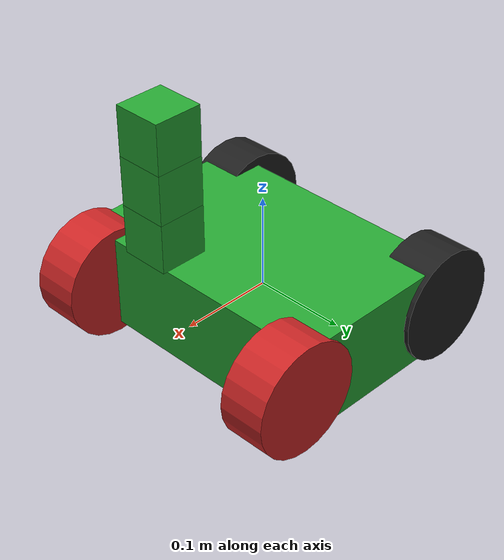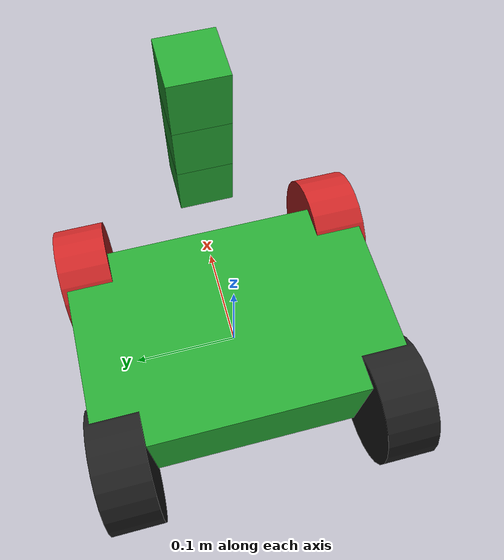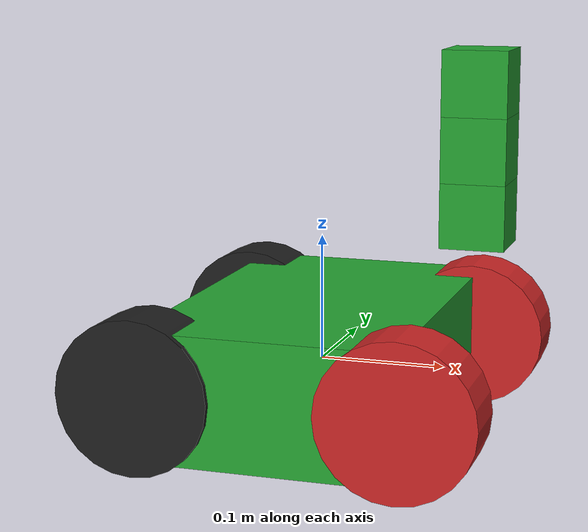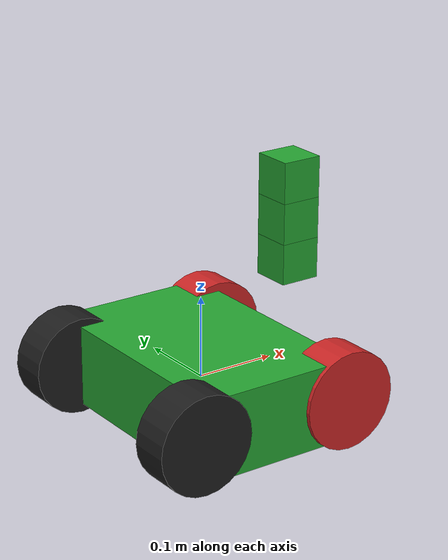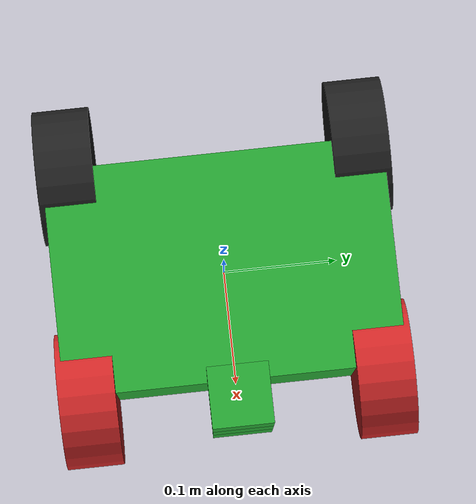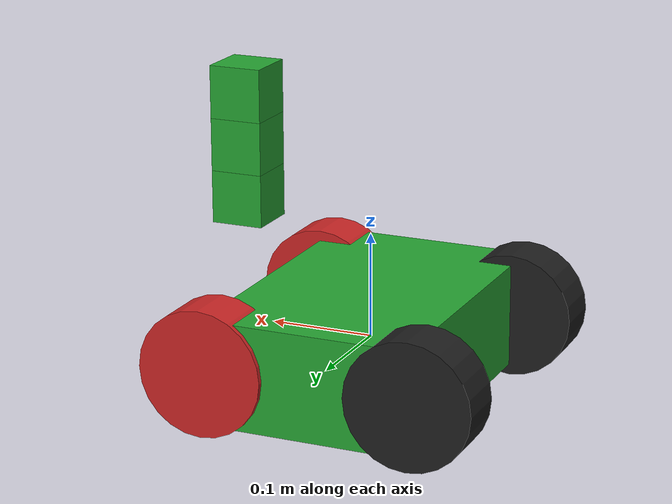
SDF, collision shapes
<?xml version='1.0'?>
<sdf version='1.6'>
  <model name='omni_car'>
    <link name='dummy'>
      <inertial>
        <pose frame=''>0.000456 0 0.000638 0 -0 0</pose>
        <mass>8.2301</mass>
        <inertia>
          <ixx>0.0209684</ixx>
          <ixy>0</ixy>
          <ixz>-0.000653858</ixz>
          <iyy>0.0214354</iyy>
          <iyz>0</iyz>
          <izz>0.02047</izz>
        </inertia>
      </inertial>
      <velocity_decay/>
      <velocity_decay/>
      <velocity_decay/>
      <velocity_decay/>
      <sensor name='camera1' type='camera'>
        <update_rate>30</update_rate>
        <camera name='head'>
          <horizontal_fov>1.39626</horizontal_fov>
          <image>
            <width>1920</width>
            <height>1080</height>
            <format>R8G8B8</format>
          </image>
          <clip>
            <near>0.02</near>
            <far>300</far>
          </clip>
          <noise>
            <type>gaussian</type>
            <mean>0</mean>
            <stddev>0.007</stddev>
          </noise>
        </camera>
        <plugin name='camera_controller' filename='libgazebo_ros_camera.so'>
          <alwaysOn>1</alwaysOn>
          <updateRate>0.0</updateRate>
          <cameraName>/</cameraName>
          <imageTopicName>cam</imageTopicName>
          <cameraInfoTopicName>camera_info</cameraInfoTopicName>
          <frameName>camera_link</frameName>
          <hackBaseline>0.07</hackBaseline>
          <distortionK1>0.0</distortionK1>
          <distortionK2>0.0</distortionK2>
          <distortionK3>0.0</distortionK3>
          <distortionT1>0.0</distortionT1>
          <distortionT2>0.0</distortionT2>
          <robotNamespace>/</robotNamespace>
        </plugin>
        <pose frame=''>0.125 0 0.175 0 -0 0</pose>
      </sensor>
      <velocity_decay/>
      <sensor name='head_hokuyo_sensor' type='ray'>
        <visualize>0</visualize>
        <update_rate>15</update_rate>
        <ray>
          <scan>
            <horizontal>
              <samples>720</samples>
              <resolution>1</resolution>
              <min_angle>-3.14159</min_angle>
              <max_angle>3.14159</max_angle>
            </horizontal>
            <vertical>
              <samples>1</samples>
              <min_angle>0</min_angle>
              <max_angle>0</max_angle>
            </vertical>
          </scan>
          <range>
            <min>0.05</min>
            <max>30</max>
            <resolution>0.01</resolution>
          </range>
          <noise>
            <type>gaussian</type>
            <mean>0</mean>
            <stddev>0.01</stddev>
          </noise>
        </ray>
        <plugin name='gazebo_ros_head_hokuyo_controller' filename='libgazebo_ros_laser.so'>
          <topicName>/scan</topicName>
          <frameName>laser_frame</frameName>
          <robotNamespace>/</robotNamespace>
        </plugin>
        <pose frame=''>0.125 0 0.225 0 -0 0</pose>
      </sensor>
      <gravity>1</gravity>
      <velocity_decay/>
      <gravity>1</gravity>
      <sensor name='imu_sensor' type='imu'>
        <always_on>1</always_on>
        <update_rate>100</update_rate>
        <visualize>1</visualize>
        <topic>__default_topic__</topic>
        <plugin name='imu_plugin' filename='libgazebo_ros_imu_sensor.so'>
          <topicName>imu</topicName>
          <bodyName>imu_link</bodyName>
          <updateRateHZ>100.0</updateRateHZ>
          <gaussianNoise>0.0</gaussianNoise>
          <xyzOffset>0 0 0</xyzOffset>
          <rpyOffset>0 0 0</rpyOffset>
          <frameName>imu_link</frameName>
          <robotNamespace>/</robotNamespace>
        </plugin>
        <pose frame=''>0.125 0 0.125 0 -0 0</pose>
        <imu/>
      </sensor>
      <self_collide>0</self_collide>
      <enable_wind>0</enable_wind>
      <kinematic>0</kinematic>
      <pose frame=''>0 0 0 0 -0 0</pose>
      <visual name='dummy_fixed_joint_lump__base_footprint_visual'>
        <pose frame=''>0 0 0 0 -0 0</pose>
        <geometry>
          <box>
            <size>0.001 0.001 0.001</size>
          </box>
        </geometry>
        <material>
          <script>
            <name>Gazebo/Green</name>
            <uri>file://media/materials/scripts/gazebo.material</uri>
          </script>
          <shader type='pixel'/>
        </material>
        <transparency>0</transparency>
        <cast_shadows>1</cast_shadows>
      </visual>
      <visual name='dummy_fixed_joint_lump__base_link_visual_1'>
        <pose frame=''>0 0 0.05 0 -0 1.5708</pose>
        <geometry>
          <box>
            <size>0.2 0.3 0.1</size>
          </box>
        </geometry>
        <material>
          <script>
            <name>Gazebo/Orange</name>
            <uri>file://media/materials/scripts/gazebo.material</uri>
          </script>
          <shader type='pixel'/>
        </material>
        <transparency>0</transparency>
        <cast_shadows>1</cast_shadows>
      </visual>
      <visual name='dummy_fixed_joint_lump__camera_link_visual_2'>
        <pose frame=''>0.125 0 0.175 0 -0 0</pose>
        <geometry>
          <box>
            <size>0.05 0.05 0.05</size>
          </box>
        </geometry>
        <material>
          <script>
            <name>Gazebo/Red</name>
            <uri>file://media/materials/scripts/gazebo.material</uri>
          </script>
          <shader type='pixel'/>
        </material>
        <transparency>0</transparency>
        <cast_shadows>1</cast_shadows>
      </visual>
      <visual name='dummy_fixed_joint_lump__laser_frame_visual_3'>
        <pose frame=''>0.125 0 0.225 0 -0 0</pose>
        <geometry>
          <mesh>
            <scale>1 1 1</scale>
            <uri>/home/chh3213/ros_wc/src/gazebo_car/meshes/hokuyo.dae</uri>
          </mesh>
        </geometry>
        <material>
          <shader type='pixel'/>
        </material>
        <transparency>0</transparency>
        <cast_shadows>1</cast_shadows>
      </visual>
      <visual name='dummy_fixed_joint_lump__imu_link_visual_4'>
        <pose frame=''>0.125 0 0.125 0 -0 0</pose>
        <geometry>
          <box>
            <size>0.05 0.05 0.05</size>
          </box>
        </geometry>
        <material>
          <script>
            <name>Gazebo/Orange</name>
            <uri>file://media/materials/scripts/gazebo.material</uri>
          </script>
          <shader type='pixel'/>
        </material>
        <transparency>0</transparency>
        <cast_shadows>1</cast_shadows>
      </visual>
      <collision name='dummy_fixed_joint_lump__base_link_collision'>
        <laser_retro>0</laser_retro>
        <max_contacts>10</max_contacts>
        <pose frame=''>0 0 0 0 -0 0</pose>
        <geometry>
          <box>
            <size>0.2 0.3 0.1</size>
          </box>
        </geometry>
        <surface>
          <friction>
            <ode>
              <mu>1</mu>
              <mu2>1</mu2>
              <fdir1>0 0 0</fdir1>
              <slip1>0</slip1>
              <slip2>0</slip2>
            </ode>
            <torsional>
              <coefficient>1</coefficient>
              <patch_radius>0</patch_radius>
              <surface_radius>0</surface_radius>
              <use_patch_radius>1</use_patch_radius>
              <ode>
                <slip>0</slip>
              </ode>
            </torsional>
          </friction>
          <bounce>
            <restitution_coefficient>0</restitution_coefficient>
            <threshold>1e+06</threshold>
          </bounce>
          <contact>
            <collide_without_contact>0</collide_without_contact>
            <collide_without_contact_bitmask>1</collide_without_contact_bitmask>
            <collide_bitmask>1</collide_bitmask>
            <ode>
              <soft_cfm>0</soft_cfm>
              <soft_erp>0.2</soft_erp>
              <kp>1e+13</kp>
              <kd>1</kd>
              <max_vel>0.01</max_vel>
              <min_depth>0</min_depth>
            </ode>
            <bullet>
              <split_impulse>1</split_impulse>
              <split_impulse_penetration_threshold>-0.01</split_impulse_penetration_threshold>
              <soft_cfm>0</soft_cfm>
              <soft_erp>0.2</soft_erp>
              <kp>1e+13</kp>
              <kd>1</kd>
            </bullet>
          </contact>
        </surface>
      </collision>
      <collision name='dummy_fixed_joint_lump__camera_link_collision_1'>
        <laser_retro>0</laser_retro>
        <max_contacts>10</max_contacts>
        <pose frame=''>0.125 0 0.175 0 -0 0</pose>
        <geometry>
          <box>
            <size>0.05 0.05 0.05</size>
          </box>
        </geometry>
        <surface>
          <friction>
            <ode>
              <mu>1</mu>
              <mu2>1</mu2>
              <fdir1>0 0 0</fdir1>
              <slip1>0</slip1>
              <slip2>0</slip2>
            </ode>
            <torsional>
              <coefficient>1</coefficient>
              <patch_radius>0</patch_radius>
              <surface_radius>0</surface_radius>
              <use_patch_radius>1</use_patch_radius>
              <ode>
                <slip>0</slip>
              </ode>
            </torsional>
          </friction>
          <bounce>
            <restitution_coefficient>0</restitution_coefficient>
            <threshold>1e+06</threshold>
          </bounce>
          <contact>
            <collide_without_contact>0</collide_without_contact>
            <collide_without_contact_bitmask>1</collide_without_contact_bitmask>
            <collide_bitmask>1</collide_bitmask>
            <ode>
              <soft_cfm>0</soft_cfm>
              <soft_erp>0.2</soft_erp>
              <kp>1e+13</kp>
              <kd>1</kd>
              <max_vel>0.01</max_vel>
              <min_depth>0</min_depth>
            </ode>
            <bullet>
              <split_impulse>1</split_impulse>
              <split_impulse_penetration_threshold>-0.01</split_impulse_penetration_threshold>
              <soft_cfm>0</soft_cfm>
              <soft_erp>0.2</soft_erp>
              <kp>1e+13</kp>
              <kd>1</kd>
            </bullet>
          </contact>
        </surface>
      </collision>
      <collision name='dummy_fixed_joint_lump__imu_link_collision_3'>
        <laser_retro>0</laser_retro>
        <max_contacts>10</max_contacts>
        <pose frame=''>0.125 0 0.125 0 -0 0</pose>
        <geometry>
          <box>
            <size>0.05 0.05 0.05</size>
          </box>
        </geometry>
        <surface>
          <friction>
            <ode>
              <mu>1</mu>
              <mu2>1</mu2>
              <fdir1>0 0 0</fdir1>
              <slip1>0</slip1>
              <slip2>0</slip2>
            </ode>
            <torsional>
              <coefficient>1</coefficient>
              <patch_radius>0</patch_radius>
              <surface_radius>0</surface_radius>
              <use_patch_radius>1</use_patch_radius>
              <ode>
                <slip>0</slip>
              </ode>
            </torsional>
          </friction>
          <bounce>
            <restitution_coefficient>0</restitution_coefficient>
            <threshold>1e+06</threshold>
          </bounce>
          <contact>
            <collide_without_contact>0</collide_without_contact>
            <collide_without_contact_bitmask>1</collide_without_contact_bitmask>
            <collide_bitmask>1</collide_bitmask>
            <ode>
              <soft_cfm>0</soft_cfm>
              <soft_erp>0.2</soft_erp>
              <kp>1e+13</kp>
              <kd>1</kd>
              <max_vel>0.01</max_vel>
              <min_depth>0</min_depth>
            </ode>
            <bullet>
              <split_impulse>1</split_impulse>
              <split_impulse_penetration_threshold>-0.01</split_impulse_penetration_threshold>
              <soft_cfm>0</soft_cfm>
              <soft_erp>0.2</soft_erp>
              <kp>1e+13</kp>
              <kd>1</kd>
            </bullet>
          </contact>
        </surface>
      </collision>
      <collision name='dummy_fixed_joint_lump__laser_frame_collision_2'>
        <laser_retro>0</laser_retro>
        <max_contacts>10</max_contacts>
        <pose frame=''>0.125 0 0.225 0 -0 0</pose>
        <geometry>
          <box>
            <size>0.05 0.05 0.05</size>
          </box>
        </geometry>
        <surface>
          <friction>
            <ode>
              <mu>1</mu>
              <mu2>1</mu2>
              <fdir1>0 0 0</fdir1>
              <slip1>0</slip1>
              <slip2>0</slip2>
            </ode>
            <torsional>
              <coefficient>1</coefficient>
              <patch_radius>0</patch_radius>
              <surface_radius>0</surface_radius>
              <use_patch_radius>1</use_patch_radius>
              <ode>
                <slip>0</slip>
              </ode>
            </torsional>
          </friction>
          <bounce>
            <restitution_coefficient>0</restitution_coefficient>
            <threshold>1e+06</threshold>
          </bounce>
          <contact>
            <collide_without_contact>0</collide_without_contact>
            <collide_without_contact_bitmask>1</collide_without_contact_bitmask>
            <collide_bitmask>1</collide_bitmask>
            <ode>
              <soft_cfm>0</soft_cfm>
              <soft_erp>0.2</soft_erp>
              <kp>1e+13</kp>
              <kd>1</kd>
              <max_vel>0.01</max_vel>
              <min_depth>0</min_depth>
            </ode>
            <bullet>
              <split_impulse>1</split_impulse>
              <split_impulse_penetration_threshold>-0.01</split_impulse_penetration_threshold>
              <soft_cfm>0</soft_cfm>
              <soft_erp>0.2</soft_erp>
              <kp>1e+13</kp>
              <kd>1</kd>
            </bullet>
          </contact>
        </surface>
      </collision>
    </link>
    <link name='wheel_1'>
      <pose frame=''>0.099999 0.13 -0 -1.5708 0 0</pose>
      <inertial>
        <pose frame=''>0 0 0 0 -0 0</pose>
        <mass>0.5</mass>
        <inertia>
          <ixx>0.01</ixx>
          <ixy>0</ixy>
          <ixz>0</ixz>
          <iyy>0.01</iyy>
          <iyz>0</iyz>
          <izz>0.01</izz>
        </inertia>
      </inertial>
      <gravity>1</gravity>
      <velocity_decay/>
      <self_collide>0</self_collide>
      <enable_wind>0</enable_wind>
      <kinematic>0</kinematic>
      <visual name='wheel_1_visual'>
        <pose frame=''>0 0 0 0 -0 0</pose>
        <geometry>
          <cylinder>
            <length>0.05</length>
            <radius>0.06</radius>
          </cylinder>
        </geometry>
        <material>
          <script>
            <name>Gazebo/Red</name>
            <uri>file://media/materials/scripts/gazebo.material</uri>
          </script>
          <shader type='pixel'/>
        </material>
        <transparency>0</transparency>
        <cast_shadows>1</cast_shadows>
      </visual>
      <collision name='wheel_1_collision'>
        <laser_retro>0</laser_retro>
        <max_contacts>10</max_contacts>
        <pose frame=''>0 0 0 0 -0 0</pose>
        <geometry>
          <cylinder>
            <radius>0.06</radius>
            <length>0.05</length>
          </cylinder>
        </geometry>
        <surface>
          <friction>
            <ode>
              <mu>1</mu>
              <mu2>1</mu2>
              <fdir1>0 0 0</fdir1>
              <slip1>0</slip1>
              <slip2>0</slip2>
            </ode>
            <torsional>
              <coefficient>1</coefficient>
              <patch_radius>0</patch_radius>
              <surface_radius>0</surface_radius>
              <use_patch_radius>1</use_patch_radius>
              <ode>
                <slip>0</slip>
              </ode>
            </torsional>
          </friction>
          <bounce>
            <restitution_coefficient>0</restitution_coefficient>
            <threshold>1e+06</threshold>
          </bounce>
          <contact>
            <collide_without_contact>0</collide_without_contact>
            <collide_without_contact_bitmask>1</collide_without_contact_bitmask>
            <collide_bitmask>1</collide_bitmask>
            <ode>
              <soft_cfm>0</soft_cfm>
              <soft_erp>0.2</soft_erp>
              <kp>1e+13</kp>
              <kd>1</kd>
              <max_vel>0.01</max_vel>
              <min_depth>0</min_depth>
            </ode>
            <bullet>
              <split_impulse>1</split_impulse>
              <split_impulse_penetration_threshold>-0.01</split_impulse_penetration_threshold>
              <soft_cfm>0</soft_cfm>
              <soft_erp>0.2</soft_erp>
              <kp>1e+13</kp>
              <kd>1</kd>
            </bullet>
          </contact>
        </surface>
      </collision>
    </link>
    <link name='wheel_2'>
      <pose frame=''>-0.1 0.13 -0 -1.5708 0 0</pose>
      <inertial>
        <pose frame=''>0 0 0 0 -0 0</pose>
        <mass>0.5</mass>
        <inertia>
          <ixx>0.01</ixx>
          <ixy>0</ixy>
          <ixz>0</ixz>
          <iyy>0.01</iyy>
          <iyz>0</iyz>
          <izz>0.01</izz>
        </inertia>
      </inertial>
      <gravity>1</gravity>
      <velocity_decay/>
      <self_collide>0</self_collide>
      <enable_wind>0</enable_wind>
      <kinematic>0</kinematic>
      <visual name='wheel_2_visual'>
        <pose frame=''>0 0 0 0 -0 0</pose>
        <geometry>
          <cylinder>
            <length>0.05</length>
            <radius>0.06</radius>
          </cylinder>
        </geometry>
        <material>
          <script>
            <name>Gazebo/Black</name>
            <uri>file://media/materials/scripts/gazebo.material</uri>
          </script>
          <shader type='pixel'/>
        </material>
        <transparency>0</transparency>
        <cast_shadows>1</cast_shadows>
      </visual>
      <collision name='wheel_2_collision'>
        <laser_retro>0</laser_retro>
        <max_contacts>10</max_contacts>
        <pose frame=''>0 0 0 0 -0 0</pose>
        <geometry>
          <cylinder>
            <radius>0.06</radius>
            <length>0.05</length>
          </cylinder>
        </geometry>
        <surface>
          <friction>
            <ode>
              <mu>1</mu>
              <mu2>1</mu2>
              <fdir1>0 0 0</fdir1>
              <slip1>0</slip1>
              <slip2>0</slip2>
            </ode>
            <torsional>
              <coefficient>1</coefficient>
              <patch_radius>0</patch_radius>
              <surface_radius>0</surface_radius>
              <use_patch_radius>1</use_patch_radius>
              <ode>
                <slip>0</slip>
              </ode>
            </torsional>
          </friction>
          <bounce>
            <restitution_coefficient>0</restitution_coefficient>
            <threshold>1e+06</threshold>
          </bounce>
          <contact>
            <collide_without_contact>0</collide_without_contact>
            <collide_without_contact_bitmask>1</collide_without_contact_bitmask>
            <collide_bitmask>1</collide_bitmask>
            <ode>
              <soft_cfm>0</soft_cfm>
              <soft_erp>0.2</soft_erp>
              <kp>1e+13</kp>
              <kd>1</kd>
              <max_vel>0.01</max_vel>
              <min_depth>0</min_depth>
            </ode>
            <bullet>
              <split_impulse>1</split_impulse>
              <split_impulse_penetration_threshold>-0.01</split_impulse_penetration_threshold>
              <soft_cfm>0</soft_cfm>
              <soft_erp>0.2</soft_erp>
              <kp>1e+13</kp>
              <kd>1</kd>
            </bullet>
          </contact>
        </surface>
      </collision>
    </link>
    <link name='wheel_3'>
      <pose frame=''>0.1 -0.13 0 -1.5708 0 0</pose>
      <inertial>
        <pose frame=''>0 0 0 0 -0 0</pose>
        <mass>0.5</mass>
        <inertia>
          <ixx>0.01</ixx>
          <ixy>0</ixy>
          <ixz>0</ixz>
          <iyy>0.01</iyy>
          <iyz>0</iyz>
          <izz>0.01</izz>
        </inertia>
      </inertial>
      <gravity>1</gravity>
      <velocity_decay/>
      <self_collide>0</self_collide>
      <enable_wind>0</enable_wind>
      <kinematic>0</kinematic>
      <visual name='wheel_3_visual'>
        <pose frame=''>0 0 0 0 -0 0</pose>
        <geometry>
          <cylinder>
            <length>0.05</length>
            <radius>0.06</radius>
          </cylinder>
        </geometry>
        <material>
          <script>
            <name>Gazebo/Red</name>
            <uri>file://media/materials/scripts/gazebo.material</uri>
          </script>
          <shader type='pixel'/>
        </material>
        <transparency>0</transparency>
        <cast_shadows>1</cast_shadows>
      </visual>
      <collision name='wheel_3_collision'>
        <laser_retro>0</laser_retro>
        <max_contacts>10</max_contacts>
        <pose frame=''>0 0 0 0 -0 0</pose>
        <geometry>
          <cylinder>
            <radius>0.06</radius>
            <length>0.05</length>
          </cylinder>
        </geometry>
        <surface>
          <friction>
            <ode>
              <mu>1</mu>
              <mu2>1</mu2>
              <fdir1>0 0 0</fdir1>
              <slip1>0</slip1>
              <slip2>0</slip2>
            </ode>
            <torsional>
              <coefficient>1</coefficient>
              <patch_radius>0</patch_radius>
              <surface_radius>0</surface_radius>
              <use_patch_radius>1</use_patch_radius>
              <ode>
                <slip>0</slip>
              </ode>
            </torsional>
          </friction>
          <bounce>
            <restitution_coefficient>0</restitution_coefficient>
            <threshold>1e+06</threshold>
          </bounce>
          <contact>
            <collide_without_contact>0</collide_without_contact>
            <collide_without_contact_bitmask>1</collide_without_contact_bitmask>
            <collide_bitmask>1</collide_bitmask>
            <ode>
              <soft_cfm>0</soft_cfm>
              <soft_erp>0.2</soft_erp>
              <kp>1e+13</kp>
              <kd>1</kd>
              <max_vel>0.01</max_vel>
              <min_depth>0</min_depth>
            </ode>
            <bullet>
              <split_impulse>1</split_impulse>
              <split_impulse_penetration_threshold>-0.01</split_impulse_penetration_threshold>
              <soft_cfm>0</soft_cfm>
              <soft_erp>0.2</soft_erp>
              <kp>1e+13</kp>
              <kd>1</kd>
            </bullet>
          </contact>
        </surface>
      </collision>
    </link>
    <link name='wheel_4'>
      <pose frame=''>-0.099999 -0.13 0 -1.5708 0 0</pose>
      <inertial>
        <pose frame=''>0 0 0 0 -0 0</pose>
        <mass>0.5</mass>
        <inertia>
          <ixx>0.01</ixx>
          <ixy>0</ixy>
          <ixz>0</ixz>
          <iyy>0.01</iyy>
          <iyz>0</iyz>
          <izz>0.01</izz>
        </inertia>
      </inertial>
      <gravity>1</gravity>
      <velocity_decay/>
      <self_collide>0</self_collide>
      <enable_wind>0</enable_wind>
      <kinematic>0</kinematic>
      <visual name='wheel_4_visual'>
        <pose frame=''>0 0 0 0 -0 0</pose>
        <geometry>
          <cylinder>
            <length>0.05</length>
            <radius>0.06</radius>
          </cylinder>
        </geometry>
        <material>
          <script>
            <name>Gazebo/Black</name>
            <uri>file://media/materials/scripts/gazebo.material</uri>
          </script>
          <shader type='pixel'/>
        </material>
        <transparency>0</transparency>
        <cast_shadows>1</cast_shadows>
      </visual>
      <collision name='wheel_4_collision'>
        <laser_retro>0</laser_retro>
        <max_contacts>10</max_contacts>
        <pose frame=''>0 0 0 0 -0 0</pose>
        <geometry>
          <cylinder>
            <radius>0.06</radius>
            <length>0.05</length>
          </cylinder>
        </geometry>
        <surface>
          <friction>
            <ode>
              <mu>1</mu>
              <mu2>1</mu2>
              <fdir1>0 0 0</fdir1>
              <slip1>0</slip1>
              <slip2>0</slip2>
            </ode>
            <torsional>
              <coefficient>1</coefficient>
              <patch_radius>0</patch_radius>
              <surface_radius>0</surface_radius>
              <use_patch_radius>1</use_patch_radius>
              <ode>
                <slip>0</slip>
              </ode>
            </torsional>
          </friction>
          <bounce>
            <restitution_coefficient>0</restitution_coefficient>
            <threshold>1e+06</threshold>
          </bounce>
          <contact>
            <collide_without_contact>0</collide_without_contact>
            <collide_without_contact_bitmask>1</collide_without_contact_bitmask>
            <collide_bitmask>1</collide_bitmask>
            <ode>
              <soft_cfm>0</soft_cfm>
              <soft_erp>0.2</soft_erp>
              <kp>1e+13</kp>
              <kd>1</kd>
              <max_vel>0.01</max_vel>
              <min_depth>0</min_depth>
            </ode>
            <bullet>
              <split_impulse>1</split_impulse>
              <split_impulse_penetration_threshold>-0.01</split_impulse_penetration_threshold>
              <soft_cfm>0</soft_cfm>
              <soft_erp>0.2</soft_erp>
              <kp>1e+13</kp>
              <kd>1</kd>
            </bullet>
          </contact>
        </surface>
      </collision>
    </link>
    <joint name='base_to_wheel1' type='revolute'>
      <parent>dummy</parent>
      <child>wheel_1</child>
      <pose frame=''>0 -0 0 0 -0 0</pose>
      <axis>
        <xyz>0 0 1</xyz>
        <use_parent_model_frame>0</use_parent_model_frame>
        <limit>
          <lower>-1e+16</lower>
          <upper>1e+16</upper>
          <effort>-1</effort>
          <velocity>-1</velocity>
        </limit>
        <dynamics>
          <spring_reference>0</spring_reference>
          <spring_stiffness>0</spring_stiffness>
          <damping>0</damping>
          <friction>0</friction>
        </dynamics>
      </axis>
      <physics>
        <ode>
          <limit>
            <cfm>0</cfm>
            <erp>0.2</erp>
          </limit>
          <suspension>
            <cfm>0</cfm>
            <erp>0.2</erp>
          </suspension>
        </ode>
      </physics>
    </joint>
    <joint name='base_to_wheel2' type='revolute'>
      <parent>dummy</parent>
      <child>wheel_2</child>
      <pose frame=''>0 -0 0 0 -0 0</pose>
      <axis>
        <xyz>0 0 1</xyz>
        <use_parent_model_frame>0</use_parent_model_frame>
        <limit>
          <lower>-1e+16</lower>
          <upper>1e+16</upper>
          <effort>-1</effort>
          <velocity>-1</velocity>
        </limit>
        <dynamics>
          <spring_reference>0</spring_reference>
          <spring_stiffness>0</spring_stiffness>
          <damping>0</damping>
          <friction>0</friction>
        </dynamics>
      </axis>
      <physics>
        <ode>
          <limit>
            <cfm>0</cfm>
            <erp>0.2</erp>
          </limit>
          <suspension>
            <cfm>0</cfm>
            <erp>0.2</erp>
          </suspension>
        </ode>
      </physics>
    </joint>
    <joint name='base_to_wheel3' type='revolute'>
      <parent>dummy</parent>
      <child>wheel_3</child>
      <pose frame=''>0 0 0 0 -0 0</pose>
      <axis>
        <xyz>0 0 1</xyz>
        <use_parent_model_frame>0</use_parent_model_frame>
        <limit>
          <lower>-1e+16</lower>
          <upper>1e+16</upper>
          <effort>-1</effort>
          <velocity>-1</velocity>
        </limit>
        <dynamics>
          <spring_reference>0</spring_reference>
          <spring_stiffness>0</spring_stiffness>
          <damping>0</damping>
          <friction>0</friction>
        </dynamics>
      </axis>
      <physics>
        <ode>
          <limit>
            <cfm>0</cfm>
            <erp>0.2</erp>
          </limit>
          <suspension>
            <cfm>0</cfm>
            <erp>0.2</erp>
          </suspension>
        </ode>
      </physics>
    </joint>
    <joint name='base_to_wheel4' type='revolute'>
      <parent>dummy</parent>
      <child>wheel_4</child>
      <pose frame=''>0 0 0 0 -0 0</pose>
      <axis>
        <xyz>0 0 1</xyz>
        <use_parent_model_frame>0</use_parent_model_frame>
        <limit>
          <lower>-1e+16</lower>
          <upper>1e+16</upper>
          <effort>-1</effort>
          <velocity>-1</velocity>
        </limit>
        <dynamics>
          <spring_reference>0</spring_reference>
          <spring_stiffness>0</spring_stiffness>
          <damping>0</damping>
          <friction>0</friction>
        </dynamics>
      </axis>
      <physics>
        <ode>
          <limit>
            <cfm>0</cfm>
            <erp>0.2</erp>
          </limit>
          <suspension>
            <cfm>0</cfm>
            <erp>0.2</erp>
          </suspension>
        </ode>
      </physics>
    </joint>
    <static>0</static>
    <allow_auto_disable>1</allow_auto_disable>
    <plugin name='mecanum_controller' filename='libgazebo_ros_planar_move.so'>
      <alwaysOn>1</alwaysOn>
      <updateRate>100.0</updateRate>
      <robotNamespace>/</robotNamespace>
      <leftFrontJoint>base_to_wheel1</leftFrontJoint>
      <rightFrontJoint>base_to_wheel3</rightFrontJoint>
      <leftRearJoint>base_to_wheel2</leftRearJoint>
      <rightRearJoint>base_to_wheel4</rightRearJoint>
      <wheelSeparation>0.26</wheelSeparation>
      <wheelDiameter>0.12</wheelDiameter>
      <torque>2</torque>
      <commandTopic>/logger1/cmd_vel</commandTopic>
      <odometryTopic>odom</odometryTopic>
      <odometryFrame>odom</odometryFrame>
      <robotBaseFrame>dummy</robotBaseFrame>
      <broadcastTF>1</broadcastTF>
    </plugin>
  </model>
</sdf>
